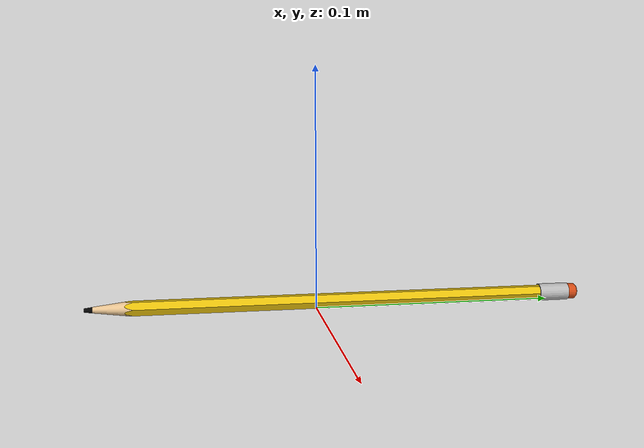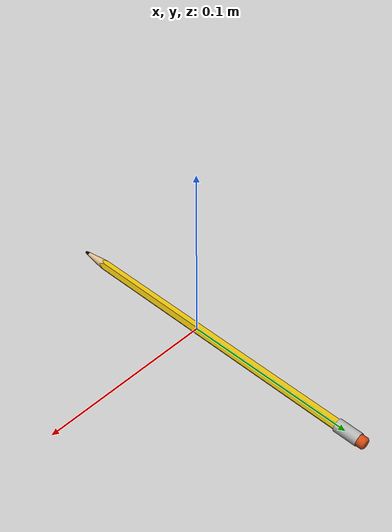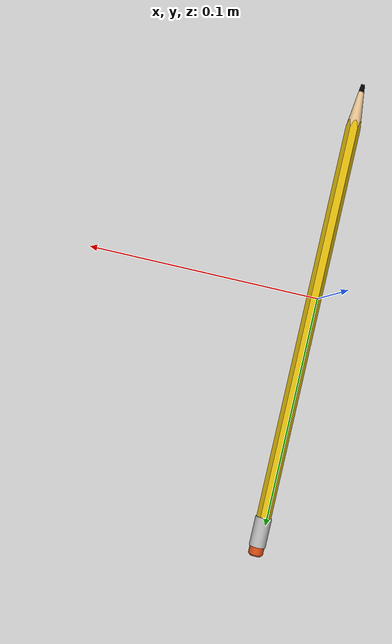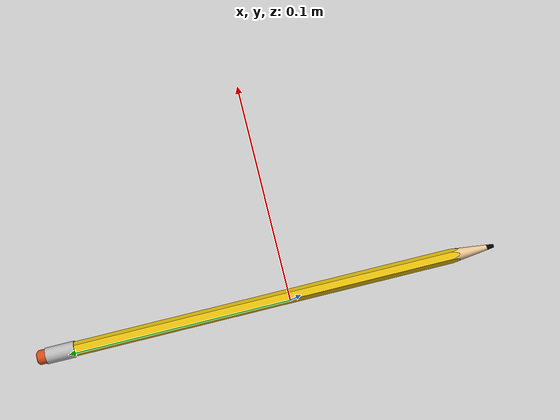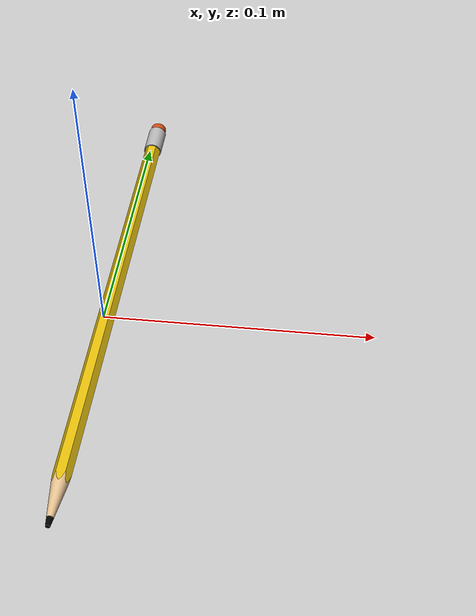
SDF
<?xml version='1.0'?>
<sdf version='1.6'>
  <model name='pencil'>
    <link name='link_17'>
      <pose frame=''>-4.671197 2.068812 -2.483210 0 -0 0</pose>
         <visual name='visual'>
        <pose frame=''>0 0 0 0 -0 0</pose>
        <geometry>
          <mesh>
            <uri>model://pencil/meshes/body.dae</uri>
            <scale>1 1 1</scale>
          </mesh>
        </geometry>
        <material>
          <lighting>1</lighting>
          <ambient>0.878 0.729 0.039 1</ambient>
          <diffuse>0.878 0.729 0.039 1</diffuse>
          <specular>0.01 0.01 0.01 1</specular>
          <emissive>0 0 0 1</emissive>
          <shader type='vertex'>
            <normal_map>__default__</normal_map>
          </shader>
        </material>
        <cast_shadows>1</cast_shadows>
        <transparency>0</transparency>
      </visual>
      <collision name='collision'>
        <laser_retro>0</laser_retro>
        <max_contacts>10</max_contacts>
        <pose frame=''>0 0 0 0 -0 0</pose>
        <geometry>
          <mesh>
            <uri>model://pencil/meshes/body.dae</uri>
            <scale>1 1 1</scale>
          </mesh>
        </geometry>
       </collision>
    </link>
    <link name='link_18'>
      <pose frame=''>-4.671197 2.068812 -2.483210 0 -0 0</pose>
       <visual name='visual'>
        <pose frame=''>0 0 0 0 -0 0</pose>
        <geometry>
          <mesh>
            <uri>model://pencil/meshes/eraser.dae</uri>
            <scale>1 1 1</scale>
          </mesh>
        </geometry>
        <material>
          <lighting>1</lighting>
          <ambient>0.815 0.286 0.078 1</ambient>
          <diffuse>0.815 0.286 0.078 1</diffuse>
          <specular>0.01 0.01 0.01 1</specular>
          <emissive>0 0 0 1</emissive>
          <shader type='vertex'>
            <normal_map>__default__</normal_map>
          </shader>
        </material>
        <cast_shadows>1</cast_shadows>
        <transparency>0</transparency>
      </visual>
      <collision name='collision'>
        <laser_retro>0</laser_retro>
        <max_contacts>10</max_contacts>
        <pose frame=''>0 0 0 0 -0 0</pose>
        <geometry>
          <mesh>
            <uri>model://pencil/meshes/eraser.dae</uri>
            <scale>1 1 1</scale>
          </mesh>
        </geometry>
       </collision>
    </link>
    <link name='link_19'>
      <pose frame=''>-4.671197 2.068812 -2.483210 0 -0 0</pose>
      <visual name='visual'>
        <pose frame=''>0 0 0 0 -0 0</pose>
        <geometry>
          <mesh>
            <uri>model://pencil/meshes/head.dae</uri>
            <scale>1 1 1</scale>
          </mesh>
        </geometry>
        <material>
          <lighting>1</lighting>
          <ambient>0.882 0.741 0.552 1</ambient>
          <diffuse>0.882 0.741 0.552 1</diffuse>
          <specular>0.01 0.01 0.01 1</specular>
          <emissive>0 0 0 1</emissive>
          <shader type='vertex'>
            <normal_map>__default__</normal_map>
          </shader>
        </material>
        <cast_shadows>1</cast_shadows>
        <transparency>0</transparency>
      </visual>
      <collision name='collision'>
        <laser_retro>0</laser_retro>
        <max_contacts>10</max_contacts>
        <pose frame=''>0 0 0 0 -0 0</pose>
        <geometry>
          <mesh>
            <uri>model://pencil/meshes/head.dae</uri>
            <scale>1 1 1</scale>
          </mesh>
        </geometry>
      </collision>
    </link>
    <link name='link_20'>
      <pose frame=''>-4.671197 2.068812 -2.483210 0 -0 0</pose>
       <visual name='visual'>
        <pose frame=''>0 0 0 0 -0 0</pose>
        <geometry>
          <mesh>
            <uri>model://pencil/meshes/silver.dae</uri>
            <scale>1 1 1</scale>
          </mesh>
        </geometry>
        <material>
          <lighting>1</lighting>
          <ambient>0.7 0.7 0.7 1</ambient>
          <diffuse>0.7 0.7 0.7 1</diffuse>
          <specular>0.01 0.01 0.01 1</specular>
          <emissive>0 0 0 1</emissive>
          <shader type='vertex'>
            <normal_map>__default__</normal_map>
          </shader>
        </material>
        <cast_shadows>1</cast_shadows>
        <transparency>0</transparency>
      </visual>
      <collision name='collision'>
        <laser_retro>0</laser_retro>
        <max_contacts>10</max_contacts>
        <pose frame=''>0 0 0 0 -0 0</pose>
        <geometry>
          <mesh>
            <uri>model://pencil/meshes/silver.dae</uri>
            <scale>1 1 1</scale>
          </mesh>
        </geometry>
       </collision>
    </link>
    <link name='link_21'>
      <pose frame=''>-4.671197 2.068812 -2.483210 0 -0 0</pose>

      <visual name='visual'>
        <pose frame=''>0 0 0 0 -0 0</pose>
        <geometry>
          <mesh>
            <uri>model://pencil/meshes/tip.dae</uri>
            <scale>1 1 1</scale>
          </mesh>
        </geometry>
        <material>
          <lighting>1</lighting>
          <ambient>0 0 0 1</ambient>
          <diffuse>0 0 0 1</diffuse>
          <specular>0.01 0.01 0.01 1</specular>
          <emissive>0 0 0 1</emissive>
          <shader type='vertex'>
            <normal_map>__default__</normal_map>
          </shader>
        </material>
        <cast_shadows>1</cast_shadows>
        <transparency>0</transparency>
      </visual>
      <collision name='collision'>
        <laser_retro>0</laser_retro>
        <max_contacts>10</max_contacts>
        <pose frame=''>0 0 0 0 -0 0</pose>
        <geometry>
          <mesh>
            <uri>model://pencil/meshes/tip.dae</uri>
            <scale>1 1 1</scale>
          </mesh>
        </geometry>
      </collision>
    </link>
    <static>1</static>
    <allow_auto_disable>1</allow_auto_disable>
  </model>
</sdf>
